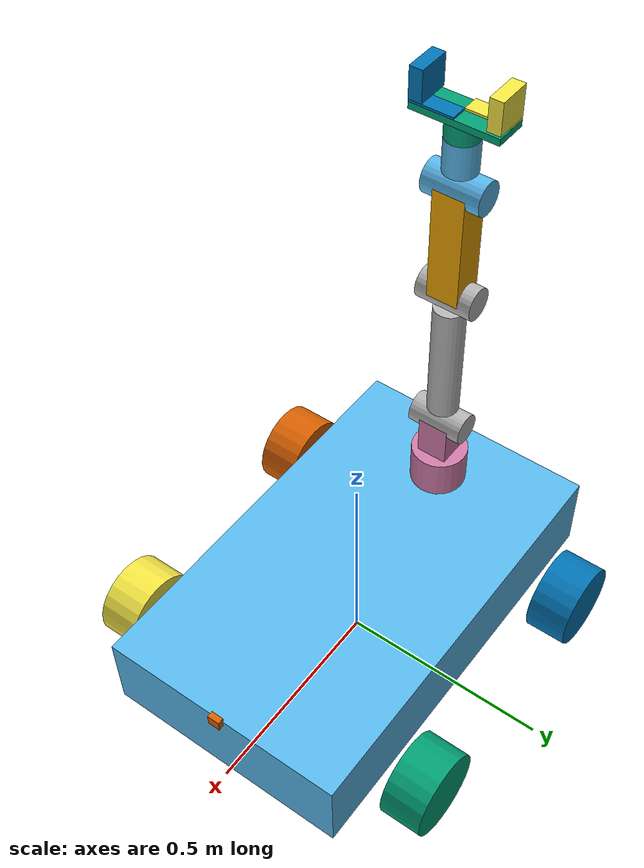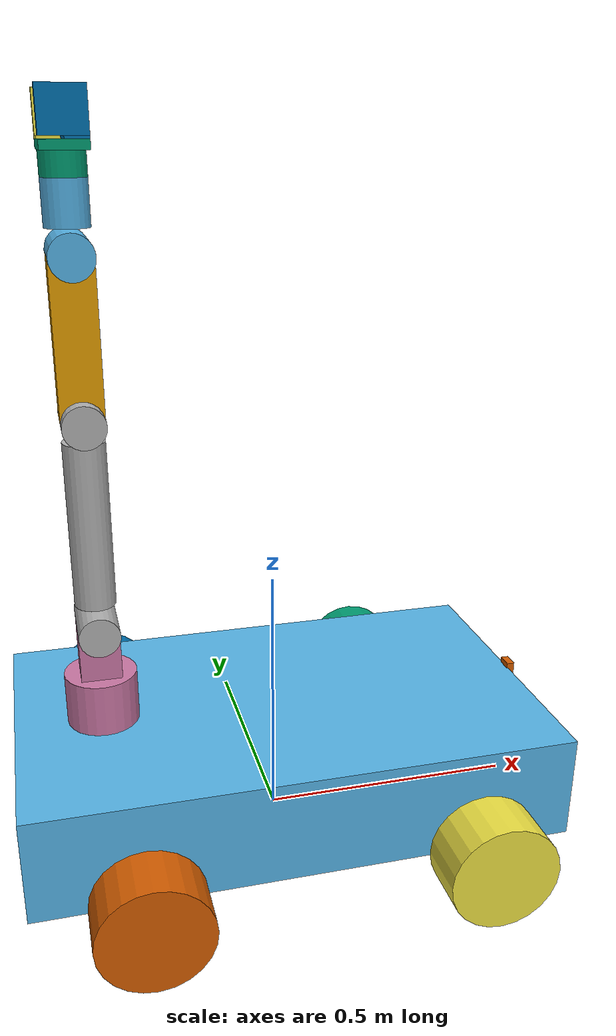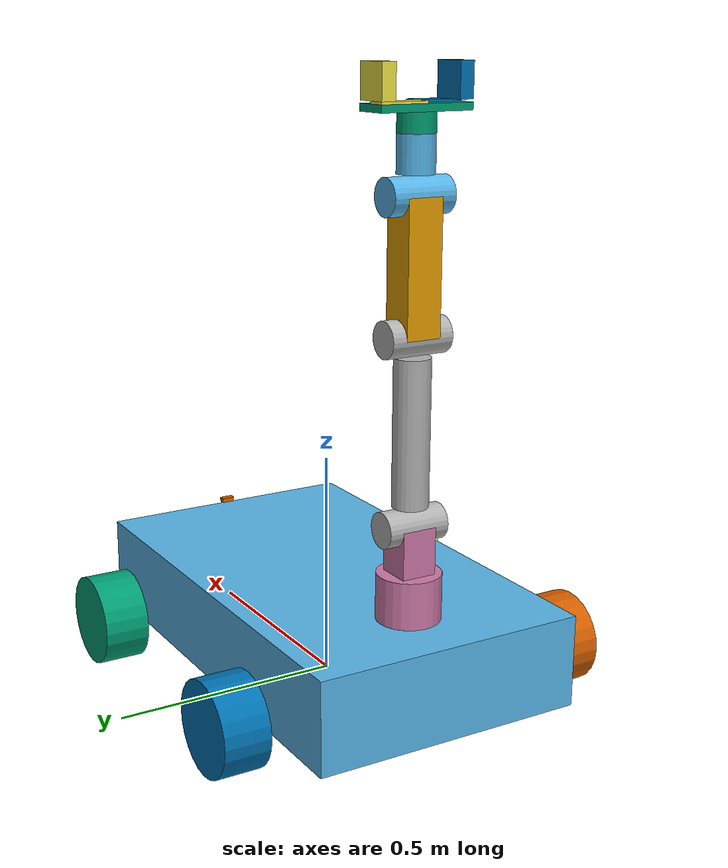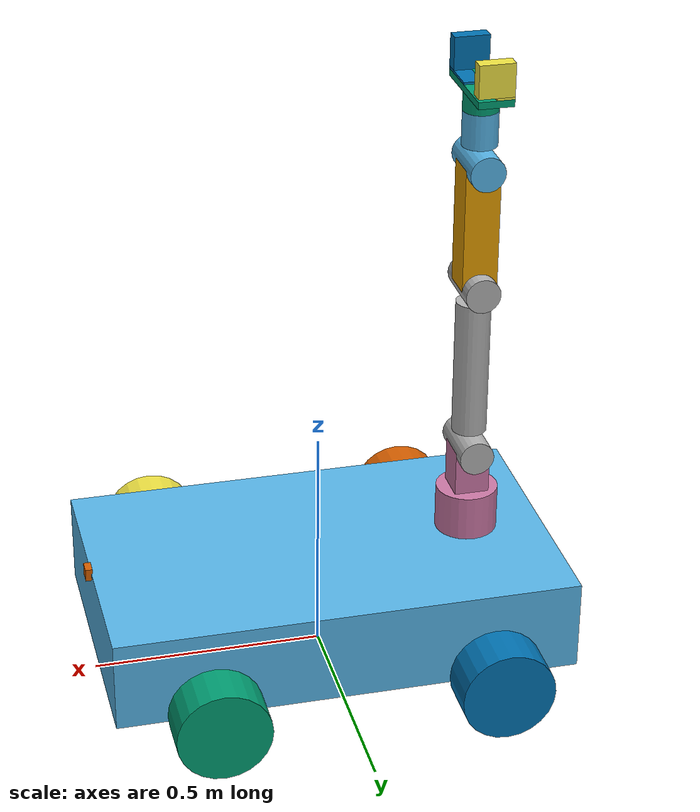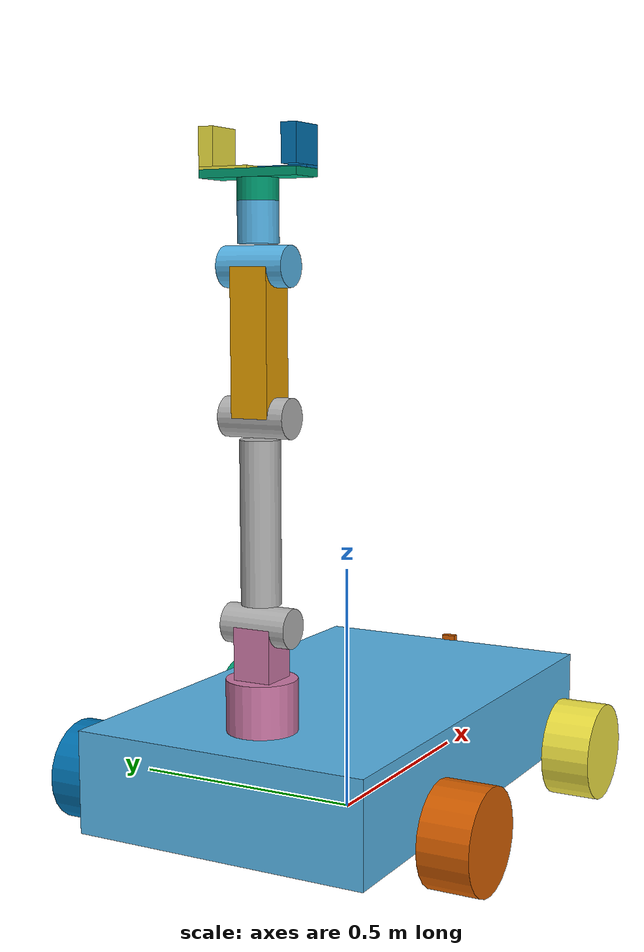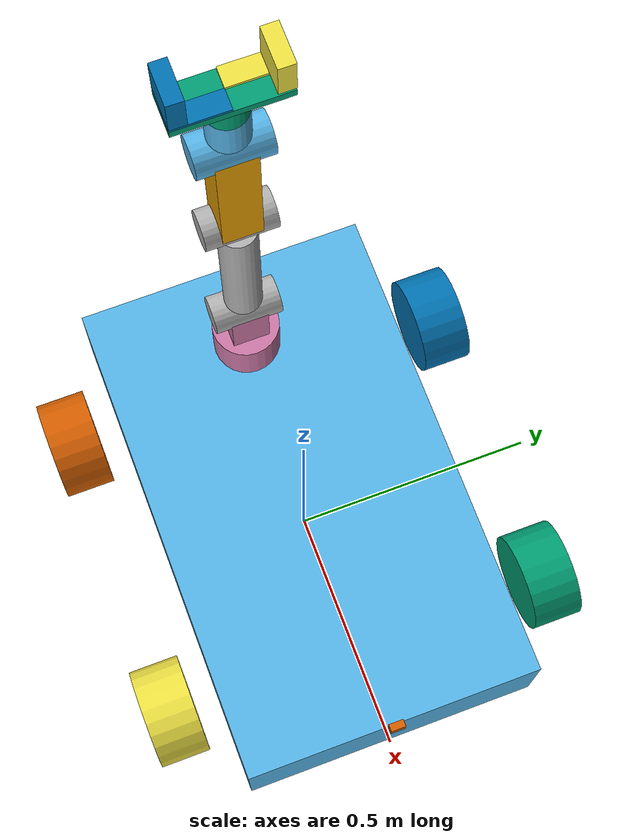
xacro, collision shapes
<?xml version="1.0" ?>

<robot name="mobile_manipulator_robot" xmlns:xacro="http://ros.org/wiki/xacro">
    <xacro:include filename="$(find custom_robot_sim)/urdf/common_macros.xacro" />
    <xacro:include filename="$(find custom_robot_sim)/urdf/robot_control.gazebo.xacro" />

    <xacro:property name="density_pla" value="600" />

    <!-- MOBILE PLATFORM -->

    <link name="base_footprint"/>

    <joint name="base_joint" type="fixed">
        <parent link="base_footprint"/>
        <child link="mobile_base_link" />
        <origin xyz="0 0 0.15" rpy="0 0 0"/>
    </joint>

    <!-- MOBILE BASE -->

    <xacro:property name="base_length" value="1" />
    <xacro:property name="base_width" value="0.6" />
    <xacro:property name="base_height" value="0.2" />

    <link name="mobile_base_link">
        <visual>
            <origin xyz="0 0 0" rpy="0 0 0"/>
            <geometry>
                <box size = "${base_length} ${base_width} ${base_height}" />
            </geometry>
        </visual>
        <collision>
            <origin xyz="0 0 0" rpy="0 0 0"/>
            <geometry>
                <box size="${base_length} ${base_width} ${base_height} "/>
            </geometry>
        </collision>
        <xacro:inertial_box length="${base_length}" width="${base_width}" height="${base_height}" density="${density_pla}">
            <origin xyz="0 0 0" rpy="0 0 0"/>
        </xacro:inertial_box>
    </link>

    <!-- WHEELS -->

    <xacro:property name="wheel_width" value="0.1" />
    <xacro:property name="wheel_radius" value="0.1" />
    <xacro:property name="wheel_x" value="${base_length/2-0.2}" />
    <xacro:property name="wheel_y" value="${base_width/2 + wheel_width/2 + 0.05}" />
    <xacro:property name="wheel_z" value="${wheel_radius/2}" />

    <xacro:property name="wheel_effort" value="${1000}" />
    <xacro:property name="wheel_velocity" value="${1000}" />
    <xacro:property name="wheel_damping" value="${0.7}" />
    <xacro:property name="wheel_friction" value="${1.0}" />

    <!-- FRONT LEFT WHEEL -->
    <joint type="continuous" name="front_left_wheel_joint">
        <origin xyz="${wheel_x} ${wheel_y} -${wheel_z}" rpy="-${pi/2} 0 0"/>
        <child link="front_left_wheel_link"/>
        <parent link="mobile_base_link"/>
        <axis xyz="0 0 1" rpy="0 0 0"/>
        <limit effort="1000" velocity="1000"/>
        <dynamics damping="${wheel_damping}" friction="${wheel_friction}"/>
    </joint>

    <link name="front_left_wheel_link">
        <visual>
            <origin xyz="0 0 0" rpy="0 0 0"/>
            <geometry>
                <mesh filename="$(find custom_robot_sim)/meshes/wheel_mesh.stl" />
            </geometry>
        </visual>
        <collision>
            <origin xyz="0 0 0" rpy="0 0 0"/>
            <geometry>
                <cylinder length="${wheel_width}" radius="${wheel_radius}" />
            </geometry>
        </collision>
        <xacro:inertial_cylinder radius="${wheel_width}" length="${wheel_radius}" density="${density_pla}">
            <origin xyz="0 0 0" rpy="0 0 0"/>
        </xacro:inertial_cylinder>
    </link>

    <!-- FRONT RIGHT WHEEL -->
    <joint type="continuous" name="front_right_wheel_joint">
        <origin xyz="${wheel_x} -${wheel_y} -${wheel_z}" rpy="-${pi/2} 0 0"/>
        <child link="front_right_wheel_link"/>
        <parent link="mobile_base_link"/>
        <axis xyz="0 0 1" rpy="0 0 0"/>
        <limit effort="1000" velocity="1000"/>
        <dynamics damping="${wheel_damping}" friction="${wheel_friction}"/>
    </joint>

    <link name="front_right_wheel_link">
        <visual>
            <origin xyz="0 0 0" rpy="0 0 0"/>
            <geometry>
                <mesh filename="$(find custom_robot_sim)/meshes/wheel_mesh.stl" />
            </geometry>
        </visual>
        <collision>
            <origin xyz="0 0 0" rpy="0 0 0"/>
            <geometry>
                <cylinder length="${wheel_width}" radius="${wheel_radius}" />
            </geometry>
        </collision>
        <xacro:inertial_cylinder radius="${wheel_width}" length="${wheel_radius}" density="${density_pla}">
            <origin xyz="0 0 0" rpy="0 0 0"/>
        </xacro:inertial_cylinder>
    </link>

    <!-- BACK LEFT WHEEL -->
    <joint type="continuous" name="back_left_wheel_joint">
        <origin xyz="-${wheel_x} ${wheel_y} -${wheel_z}" rpy="-${pi/2} 0 0"/>
        <child link="back_left_wheel_link"/>
        <parent link="mobile_base_link"/>
        <axis xyz="0 0 1" rpy="0 0 0"/>
        <limit effort="1000" velocity="1000"/>
        <dynamics damping="${wheel_damping}" friction="${wheel_friction}"/>
    </joint>

    <link name="back_left_wheel_link">
        <visual>
            <origin xyz="0 0 0" rpy="0 0 0"/>
            <geometry>
                <mesh filename="$(find custom_robot_sim)/meshes/wheel_mesh.stl" />
            </geometry>
        </visual>
        <collision>
            <origin xyz="0 0 0" rpy="0 0 0"/>
            <geometry>
                <cylinder length="${wheel_width}" radius="${wheel_radius}" />
            </geometry>
        </collision>
        <xacro:inertial_cylinder radius="${wheel_width}" length="${wheel_radius}" density="${density_pla}">
            <origin xyz="0 0 0" rpy="0 0 0"/>
        </xacro:inertial_cylinder>
    </link>

    <!-- BACK RIGHT WHEEL -->
    <joint type="continuous" name="back_right_wheel_joint">
        <origin xyz="-${wheel_x} -${wheel_y} -${wheel_z}" rpy="-${pi/2} 0 0"/>
        <child link="back_right_wheel_link"/>
        <parent link="mobile_base_link"/>
        <axis xyz="0 0 1" rpy="0 0 0"/>
        <limit effort="1000" velocity="1000"/>
        <dynamics damping="${wheel_damping}" friction="${wheel_friction}"/>
    </joint>

    <link name="back_right_wheel_link">
        <visual>
            <origin xyz="0 0 0" rpy="0 0 0"/>
            <geometry>
                <mesh filename="$(find custom_robot_sim)/meshes/wheel_mesh.stl" />
            </geometry>
        </visual>
        <collision>
            <origin xyz="0 0 0" rpy="0 0 0"/>
            <geometry>
                <cylinder length="${wheel_width}" radius="${wheel_radius}" />
            </geometry>
        </collision>
        <xacro:inertial_cylinder radius="${wheel_width}" length="${wheel_radius}" density="${density_pla}">
            <origin xyz="0 0 0" rpy="0 0 0"/>
        </xacro:inertial_cylinder>
    </link>

    <!-- ROBOTIC ARM -->

    <!-- ARM BASE -->
    <joint type="revolute" name="arm_base_joint">
        <origin xyz="-${base_length/3} 0 0.1" rpy="0 0 0"/>
        <child link="arm_base_link"/>
        <parent link="mobile_base_link"/>
        <axis xyz="0 0 1" rpy="0 0 0"/>
        <limit effort="100" velocity="100" lower="-${pi}" upper="${pi}"/>
        <dynamics damping="0.7" friction="1.0"/>
    </joint>

    <link name="arm_base_link">
        <visual>
            <origin xyz="0 0 0" rpy="0 0 0"/>
            <geometry>
                <mesh filename="$(find custom_robot_sim)/meshes/arm_base_mesh.stl" />
            </geometry>
        </visual>
        <collision>
            <origin xyz="0 0 0.05" rpy="0 0 0"/>
            <geometry>
                <cylinder length="0.1" radius="${0.135/2}" />
            </geometry>
        </collision>
        <collision>
            <origin xyz="0 0 0.15" rpy="0 0 0"/>
            <geometry>
                <box size="0.075 0.075 0.1"/>
            </geometry>
        </collision>
        <xacro:inertial_cylinder radius="${0.135/2}" length="0.2" density="${density_pla}">
            <origin xyz="0 0 0.1" rpy="0 0 0"/>
        </xacro:inertial_cylinder>
    </link>

    <!-- LINK 1 -->
    <joint type="revolute" name="link_1_joint">
        <origin xyz="0 0 0.2" rpy="-${pi/2} 0 0"/>
        <child link="link_1_link"/>
        <parent link="arm_base_link"/>
        <axis xyz="0 0 1" rpy="0 0 0"/>
        <limit effort="100" velocity="100" lower="-${pi/2}" upper="${pi/2}"/>
        <dynamics damping="0.7" friction="1.0"/>
    </joint>

    <link name="link_1_link">
        <visual>
            <origin xyz="0 -${0.385/2} 0" rpy="${pi/2} 0 0"/>
            <geometry>
                <mesh filename="$(find custom_robot_sim)/meshes/link_1_mesh.stl" />
            </geometry>
        </visual>
        <collision>
            <origin xyz="0 0 0" rpy="0 0 0"/>
            <geometry>
                <cylinder length="0.135" radius="${0.075/2}" />
            </geometry>
        </collision>
        <collision>
            <origin xyz="0 -${0.385/2} 0" rpy="${pi/2} 0 0"/>
            <geometry>
                <cylinder length="0.305" radius="${0.075/2}" />
            </geometry>
        </collision>
        <collision>
            <origin xyz="0 -${0.385} 0" rpy="0 0 0"/>
            <geometry>
                <cylinder length="0.135" radius="${0.075/2}" />
            </geometry>
        </collision>
        <xacro:inertial_cylinder radius="${0.075/2}" length="0.305" density="${density_pla}">
            <origin xyz="0 -${0.385/2} 0.0" rpy="${pi/2} 0 0"/>
        </xacro:inertial_cylinder>
    </link>

    <!-- LINK 2 -->
    <joint type="revolute" name="link_2_joint">
        <origin xyz="0 -0.385 0" rpy="0 0 0"/>
        <child link="link_2_link"/>
        <parent link="link_1_link"/>
        <axis xyz="0 0 1" rpy="0 0 0"/>
        <limit effort="100" velocity="100" lower="-${pi/2}" upper="${pi/2}"/>
        <dynamics damping="0.7" friction="1.0"/>
    </joint>

    <link name="link_2_link">
        <visual>
            <origin xyz="0 -${0.270/2} 0" rpy="${pi/2} 0 0"/>
            <geometry>
                <mesh filename="$(find custom_robot_sim)/meshes/link_2_mesh.stl" scale="1 1 1"/>
            </geometry>
        </visual>
        <collision>
            <origin xyz="0 -${0.270/2} 0" rpy="${pi/2} 0 0"/>
            <geometry>
                <box size="0.075 0.075 0.27"/>
            </geometry>
        </collision>
        <xacro:inertial_box length="0.075" width="0.075" height="0.27" density="${density_pla}">
            <origin xyz="0 -${0.270/2} 0" rpy="${pi/2} 0 0"/>
        </xacro:inertial_box>
    </link>

    <!-- LINK 3 -->
    <joint type="revolute" name="link_3_joint">
        <origin xyz="0 -0.27 0" rpy="0 0 0"/>
        <child link="link_3_link"/>
        <parent link="link_2_link"/>
        <axis xyz="0 0 1" rpy="0 0 0"/>
        <limit effort="100" velocity="100" lower="-${pi/2}" upper="${pi/2}"/>
        <dynamics damping="0.7" friction="1.0"/>
    </joint>

    <link name="link_3_link">
        <visual>
            <origin xyz="0 -0.115 0" rpy="${pi/2} 0 0"/>
            <geometry>
                <mesh filename="$(find custom_robot_sim)/meshes/link_3_mesh.stl" /> <!--scale="0.01 0.01 0.01"/-->
                <!--cylinder length="0.27" radius="0.0375" /-->
            </geometry>
        </visual>
        <collision>
            <origin xyz="0 0 0" rpy="0 0 0"/>
            <geometry>
                <cylinder length="0.135" radius="${0.075/2}" />
            </geometry>
        </collision>
        <collision>
            <origin xyz="0 -${0.115-0.075/2} 0" rpy="${pi/2} 0 0"/>
            <geometry>
                <cylinder length="0.075" radius="${0.075/2}" />
            </geometry>
        </collision>
        <xacro:inertial_cylinder radius="${0.075/2}" length="0.115" density="${density_pla}">
            <origin xyz="0 -${0.115/2} 0" rpy="${pi/2} 0 0"/>
        </xacro:inertial_cylinder>
    </link>

    <!-- GRIPPER BASE -->
    <joint type="revolute" name="gripper_base_joint">
        <origin xyz="0.0 -0.115 0.0" rpy="${pi/2} ${pi/2} 0"/>
        <child link="gripper_base_link"/>
        <parent link="link_3_link"/>
        <axis xyz="0 0 1" rpy="0 0 0"/>
        <limit effort="100" velocity="100" lower="-${pi}" upper="${pi}"/>
        <dynamics damping="0.7" friction="1.0"/>
    </joint>

    <link name="gripper_base_link">
        <visual>
            <origin xyz="0 -0.1 0" rpy="0 0 0"/>
            <geometry>
                <!--mesh filename="$(find custom_robot_sim)/meshes/gripper_base_mesh.stl" scale="0.001 0.001 0.001"/-->
                <box size="0.3 0.3 0.02" />
            </geometry>
        </visual>
        <collision>
            <origin xyz="0 0.0 0.02" rpy="0 0 0"/>
            <geometry>
                <cylinder length="0.04" radius="${0.075/2}" />
            </geometry>
        </collision>
        <collision>
            <origin xyz="0 0.0 0.0475" rpy="0 0 0"/>
            <geometry>
                <box size="0.2 0.075 0.015"/>
            </geometry>
        </collision>
        <xacro:inertial_cylinder radius="${0.075/2}" length="0.04" density="${density_pla}">
            <origin xyz="0 0 0.02" rpy="0 0 0"/>
        </xacro:inertial_cylinder>
    </link>

    <!-- GRIPPER FINGER LEFT -->
    <joint type="prismatic" name="gripper_finger_left_joint">
        <origin xyz="-0.05 0.0 0.055" rpy="0 ${pi/2} 0"/>
        <child link="gripper_finger_left_link"/>
        <parent link="gripper_base_link"/>
        <axis xyz="0 0 1" rpy="0 0 0"/>
        <limit effort="1000" velocity="1000" lower="0.0" upper="0.07"/>
        <dynamics damping="0.7" friction="1.0"/>
    </joint>

    <link name="gripper_finger_left_link">
        <visual>
            <origin xyz="-0.2 0 -0.05" rpy="0 -${pi/2} 0"/>
            <geometry>
                <!--mesh filename="$(find custom_robot_sim)/meshes/gripper_finger_mesh.stl" scale="0.0005 0.0003 0.004"/-->
                <box size="0.06 0.03 0.5" />
            </geometry>
        </visual>
        <collision>
            <origin xyz="-${0.07/2+0.005} 0 -0.035" rpy="0 0 0"/>
            <geometry>
                <box size="0.07 0.075 0.03" />
            </geometry>
        </collision>
        <collision>
            <origin xyz="-${0.005/2} -${0.0375/2} 0.0" rpy="0 0 0"/>
            <geometry>
                <box size="0.005 0.0375 0.1" />
            </geometry>
        </collision>
        <xacro:inertial_box length="0.07" width="0.075" height="0.03" density="${density_pla}">
            <origin xyz="-${0.07/2+0.005} 0 -0.035" rpy="0 0 0"/>
        </xacro:inertial_box>
    </link>

    <!-- GRIPPER FINGER RIGHT -->
    <joint type="prismatic" name="gripper_finger_right_joint">
        <mimic joint="gripper_finger_left.joint"/>
        <origin xyz="0.05 0.0 0.055" rpy="0 ${pi/2} ${pi}"/>
        <child link="gripper_finger_right_link"/>
        <parent link="gripper_base_link"/>
        <axis xyz="0 0 1" rpy="0 0 0"/>
        <limit effort="1000" velocity="1000" lower="0.0" upper="0.07"/>
        <dynamics damping="0.7" friction="1.0"/>
    </joint>

    <link name="gripper_finger_right_link">
        <visual>
            <origin xyz="-0.2 0 -0.05" rpy="0 -${pi/2} 0"/>
            <geometry>
                <!--mesh filename="$(find custom_robot_sim)/meshes/gripper_finger_mesh.stl" scale="0.001 0.001 0.001"/-->
                <box size="0.06 0.03 0.5" />
            </geometry>
        </visual>
        <collision>
            <origin xyz="-${0.07/2+0.005} 0 -0.035" rpy="0 0 0"/>
            <geometry>
                <box size="0.07 0.075 0.03" />
            </geometry>
        </collision>
        <collision>
            <origin xyz="-${0.005/2} -${0.0375/2} 0.0" rpy="0 0 0"/>
            <geometry>
                <box size="0.005 0.0375 0.1" />
            </geometry>
        </collision>
        <xacro:inertial_box length="0.07" width="0.075" height="0.03" density="${density_pla}">
            <origin xyz="-${0.07/2+0.005} 0 -0.035" rpy="0 0 0"/>
        </xacro:inertial_box>
    </link>

    <!-- CAMERA -->
    <joint name="camera_joint" type="fixed">
        <origin xyz="${base_length/2} -0.011 0.084" rpy="0 0 0"/>
        <parent link="mobile_base_link"/>
        <child link="camera_link"/>
    </joint>

    <link name="camera_link">
        <collision>
        <origin xyz="0.005 0.011 0.013" rpy="0 0 0"/>
        <geometry>
            <box size="0.015 0.030 0.027"/>
        </geometry>
        </collision>
    </link>

    <joint name="camera_rgb_joint" type="fixed">
        <origin xyz="0.003 0.011 0.009" rpy="0 0 0"/>
        <parent link="camera_link"/>
        <child link="camera_rgb_frame"/>
    </joint>
    <link name="camera_rgb_frame"/>

    <joint name="camera_rgb_optical_joint" type="fixed">
        <origin xyz="0 0 0" rpy="-1.57 0 -1.57"/>
        <parent link="camera_rgb_frame"/>
        <child link="camera_rgb_optical_frame"/>
    </joint>
    <link name="camera_rgb_optical_frame"/>
</robot>
